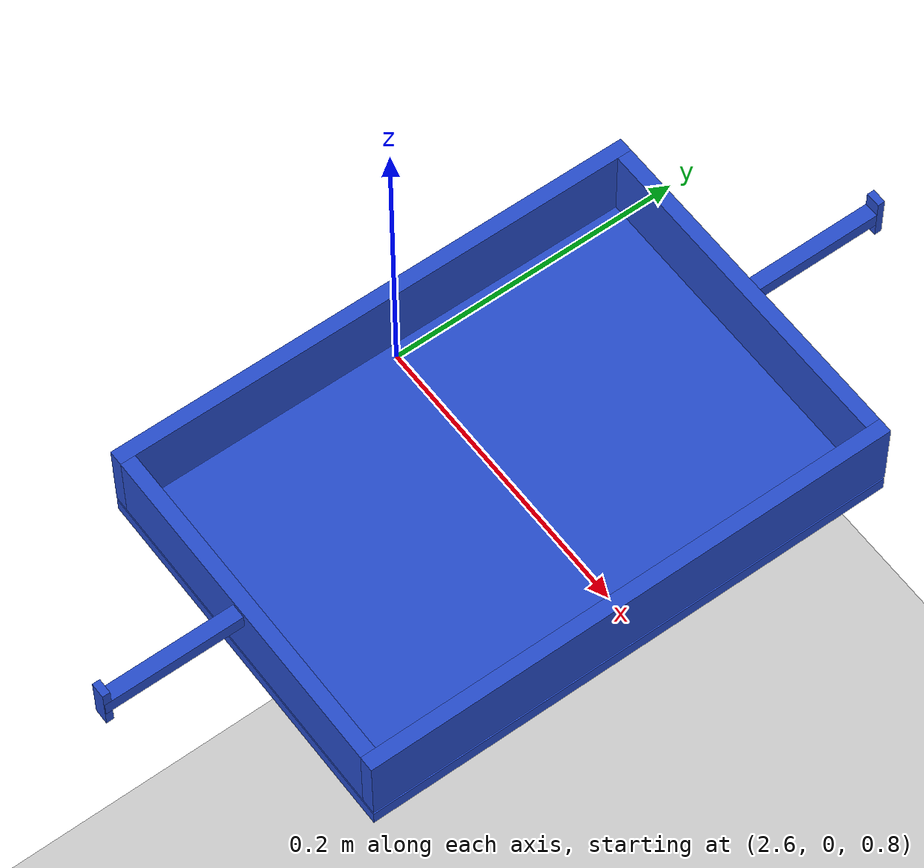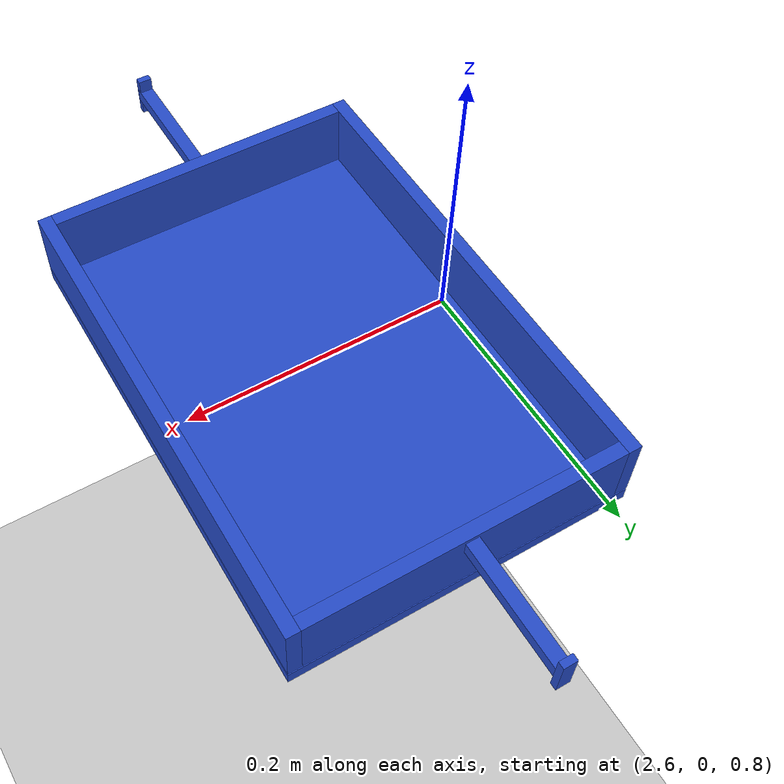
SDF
<sdf version="1.6">
 <world name="default">
  <light name="sun" type="directional">
   <pose>0 0 10 0 -0 0</pose>
   <diffuse>0.8 0.8 0.8 1</diffuse>
   <specular>0.1 0.1 0.1 1</specular>
   <attenuation>
    <range>1000</range>
    <constant>0.9</constant>
    <linear>0.01</linear>
    <quadratic>0.001</quadratic>
   </attenuation>
   <direction>-0.5 0.5 -1</direction>
  </light>
  <model name="ground_plane">
   <static>1</static>
   <link name="link">
    <collision name="collision">
     <geometry><plane><normal>0 0 1</normal><size>100 100</size></plane></geometry>
     <surface><friction><ode><mu>100</mu><mu2>50</mu2></ode></friction></surface>
    </collision>
    <visual name="visual">
     <cast_shadows>0</cast_shadows>
     <geometry><plane><normal>0 0 1</normal><size>100 100</size></plane></geometry>
     <material>
      <script><uri>file://media/materials/scripts/gazebo.material</uri><name>Gazebo/Grey</name></script>
     </material>
    </visual>
   </link>
  </model>
  <gravity>0 0 -9.8</gravity>
  <magnetic_field>6e-06 2.3e-05 -4.2e-05</magnetic_field>
  <atmosphere type="adiabatic"/>
  <physics name="default_physics" default="0" type="ode">
   <max_step_size>0.001</max_step_size>
   <real_time_factor>1</real_time_factor>
   <real_time_update_rate>1000</real_time_update_rate>
  </physics>
  <scene><ambient>0.4 0.4 0.4 1</ambient><background>0.7 0.7 0.7 1</background><shadows>1</shadows></scene>
  <spherical_coordinates>
   <surface_model>EARTH_WGS84</surface_model>
   <latitude_deg>0</latitude_deg>
   <longitude_deg>0</longitude_deg>
   <elevation>0</elevation>
   <heading_deg>0</heading_deg>
  </spherical_coordinates>
  <model name="tray_mod">
   <link name="link_0">
    <pose>-0 -0 -0.051818 0 -0 0</pose>
    <inertial>
     <mass>0.2</mass>
     <inertia>
      <ixx>0.00075</ixx>
      <ixy>0</ixy>
      <ixz>0</ixz>
      <iyy>0.000333</iyy>
      <iyz>0</iyz>
      <izz>0.001083</izz>
     </inertia>
    </inertial>
    <visual name="visual">
     <geometry><box><size>0.36 0.25 0.01</size></box></geometry>
     <material>
      <lighting>1</lighting>
      <script><uri>file://media/materials/scripts/gazebo.material</uri><name>Gazebo/Blue</name></script>
      <shader type="pixel"><normal_map>__default__</normal_map></shader>
      <ambient>0 0 0.3 1</ambient>
      <diffuse>0 0 0.7 1</diffuse>
      <specular>0 0 0.3 1</specular>
      <emissive>0 0 0.2 1</emissive>
     </material>
    </visual>
    <collision name="collision">
     <geometry><box><size>0.36 0.25 0.01</size></box></geometry>
     <surface>
      <friction>
       <ode><mu>1</mu><mu2>1</mu2><fdir1>0 0 0</fdir1><slip1>0</slip1><slip2>0</slip2></ode>
       <torsional>
        <coefficient>1</coefficient>
        <patch_radius>0</patch_radius>
        <surface_radius>0</surface_radius>
        <use_patch_radius>1</use_patch_radius>
        <ode><slip>0</slip></ode>
       </torsional>
      </friction>
      <bounce><restitution_coefficient>0</restitution_coefficient><threshold>1e+06</threshold></bounce>
      <contact>
       <collide_without_contact>0</collide_without_contact>
       <collide_without_contact_bitmask>1</collide_without_contact_bitmask>
       <collide_bitmask>1</collide_bitmask>
       <ode>
        <soft_cfm>0</soft_cfm>
        <soft_erp>0.2</soft_erp>
        <kp>1e+13</kp>
        <kd>1</kd>
        <max_vel>0.01</max_vel>
        <min_depth>0</min_depth>
       </ode>
       <bullet>
        <split_impulse>1</split_impulse>
        <split_impulse_penetration_threshold>-0.01</split_impulse_penetration_threshold>
        <soft_cfm>0</soft_cfm>
        <soft_erp>0.2</soft_erp>
        <kp>1e+13</kp>
        <kd>1</kd>
       </bullet>
      </contact>
     </surface>
    </collision>
   </link>
   <link name="link_1">
    <pose>0 -0.12 -0.02 1.5708 -0 0</pose>
    <inertial>
     <mass>0.025</mass>
     <inertia>
      <ixx>0.000188</ixx>
      <ixy>5e-06</ixy>
      <ixz>0</ixz>
      <iyy>0.166667</iyy>
      <iyz>0</iyz>
      <izz>0.000193</izz>
     </inertia>
    </inertial>
    <visual name="visual">
     <geometry><box><size>0.36 0.05 0.01</size></box></geometry>
     <material>
      <lighting>1</lighting>
      <script><uri>file://media/materials/scripts/gazebo.material</uri><name>Gazebo/Blue</name></script>
      <shader type="pixel"><normal_map>__default__</normal_map></shader>
      <ambient>0 0 0.3 1</ambient>
      <diffuse>0 0 0.7 1</diffuse>
      <specular>0 0 0.3 1</specular>
      <emissive>0 0 0 1</emissive>
     </material>
    </visual>
    <collision name="collision">
     <geometry><box><size>0.36 0.05 0.01</size></box></geometry>
     <surface>
      <friction>
       <ode><mu>1</mu><mu2>1</mu2><fdir1>0 0 0</fdir1><slip1>0</slip1><slip2>0</slip2></ode>
       <torsional>
        <coefficient>1</coefficient>
        <patch_radius>0</patch_radius>
        <surface_radius>0</surface_radius>
        <use_patch_radius>1</use_patch_radius>
        <ode><slip>0</slip></ode>
       </torsional>
      </friction>
      <bounce><restitution_coefficient>0</restitution_coefficient><threshold>1e+06</threshold></bounce>
      <contact>
       <collide_without_contact>0</collide_without_contact>
       <collide_without_contact_bitmask>1</collide_without_contact_bitmask>
       <collide_bitmask>1</collide_bitmask>
       <ode>
        <soft_cfm>0</soft_cfm>
        <soft_erp>0.2</soft_erp>
        <kp>1e+13</kp>
        <kd>1</kd>
        <max_vel>0.01</max_vel>
        <min_depth>0</min_depth>
       </ode>
       <bullet>
        <split_impulse>1</split_impulse>
        <split_impulse_penetration_threshold>-0.01</split_impulse_penetration_threshold>
        <soft_cfm>0</soft_cfm>
        <soft_erp>0.2</soft_erp>
        <kp>1e+13</kp>
        <kd>1</kd>
       </bullet>
      </contact>
     </surface>
    </collision>
   </link>
   <link name="link_1_clone">
    <pose>0 0.12 -0.02 1.5708 -0 0</pose>
    <inertial>
     <mass>0.025</mass>
     <inertia>
      <ixx>0.000188</ixx>
      <ixy>5e-06</ixy>
      <ixz>0</ixz>
      <iyy>0.166667</iyy>
      <iyz>0</iyz>
      <izz>0.000193</izz>
     </inertia>
    </inertial>
    <visual name="visual">
     <geometry><box><size>0.36 0.05 0.01</size></box></geometry>
     <material>
      <lighting>1</lighting>
      <script><uri>file://media/materials/scripts/gazebo.material</uri><name>Gazebo/Blue</name></script>
      <shader type="pixel"><normal_map>__default__</normal_map></shader>
      <ambient>0 0 0.3 1</ambient>
      <diffuse>0 0 0.7 1</diffuse>
      <specular>0 0 0.3 1</specular>
      <emissive>0 0 0 1</emissive>
     </material>
    </visual>
    <collision name="collision">
     <geometry><box><size>0.36 0.05 0.01</size></box></geometry>
     <surface>
      <friction>
       <ode><mu>1</mu><mu2>1</mu2><fdir1>0 0 0</fdir1><slip1>0</slip1><slip2>0</slip2></ode>
       <torsional>
        <coefficient>1</coefficient>
        <patch_radius>0</patch_radius>
        <surface_radius>0</surface_radius>
        <use_patch_radius>1</use_patch_radius>
        <ode><slip>0</slip></ode>
       </torsional>
      </friction>
      <bounce><restitution_coefficient>0</restitution_coefficient><threshold>1e+06</threshold></bounce>
      <contact>
       <collide_without_contact>0</collide_without_contact>
       <collide_without_contact_bitmask>1</collide_without_contact_bitmask>
       <collide_bitmask>1</collide_bitmask>
       <ode>
        <soft_cfm>0</soft_cfm>
        <soft_erp>0.2</soft_erp>
        <kp>1e+13</kp>
        <kd>1</kd>
        <max_vel>0.01</max_vel>
        <min_depth>0</min_depth>
       </ode>
       <bullet>
        <split_impulse>1</split_impulse>
        <split_impulse_penetration_threshold>-0.01</split_impulse_penetration_threshold>
        <soft_cfm>0</soft_cfm>
        <soft_erp>0.2</soft_erp>
        <kp>1e+13</kp>
        <kd>1</kd>
       </bullet>
      </contact>
     </surface>
    </collision>
   </link>
   <link name="link_2">
    <pose>-0.175 -0 -0.02 1.5708 -0 1.5708</pose>
    <inertial>
     <mass>0.02</mass>
     <inertia><ixx>5.4e-05</ixx><ixy>0</ixy><ixz>0</ixz><iyy>4e-06</iyy><iyz>0</iyz><izz>5.8e-05</izz></inertia>
    </inertial>
    <visual name="visual">
     <geometry><box><size>0.23 0.05 0.01</size></box></geometry>
     <material>
      <lighting>1</lighting>
      <script><uri>file://media/materials/scripts/gazebo.material</uri><name>Gazebo/Blue</name></script>
      <shader type="pixel"><normal_map>__default__</normal_map></shader>
      <ambient>0 0 0.3 1</ambient>
      <diffuse>0 0 0.7 1</diffuse>
      <specular>0 0 0.3 1</specular>
      <emissive>0 0 0 1</emissive>
     </material>
    </visual>
    <collision name="collision">
     <geometry><box><size>0.23 0.05 0.01</size></box></geometry>
     <surface>
      <friction>
       <ode><mu>1</mu><mu2>1</mu2><fdir1>0 0 0</fdir1><slip1>0</slip1><slip2>0</slip2></ode>
       <torsional>
        <coefficient>1</coefficient>
        <patch_radius>0</patch_radius>
        <surface_radius>0</surface_radius>
        <use_patch_radius>1</use_patch_radius>
        <ode><slip>0</slip></ode>
       </torsional>
      </friction>
      <bounce><restitution_coefficient>0</restitution_coefficient><threshold>1e+06</threshold></bounce>
      <contact>
       <collide_without_contact>0</collide_without_contact>
       <collide_without_contact_bitmask>1</collide_without_contact_bitmask>
       <collide_bitmask>1</collide_bitmask>
       <ode>
        <soft_cfm>0</soft_cfm>
        <soft_erp>0.2</soft_erp>
        <kp>1e+13</kp>
        <kd>1</kd>
        <max_vel>0.01</max_vel>
        <min_depth>0</min_depth>
       </ode>
       <bullet>
        <split_impulse>1</split_impulse>
        <split_impulse_penetration_threshold>-0.01</split_impulse_penetration_threshold>
        <soft_cfm>0</soft_cfm>
        <soft_erp>0.2</soft_erp>
        <kp>1e+13</kp>
        <kd>1</kd>
       </bullet>
      </contact>
     </surface>
    </collision>
   </link>
   <link name="link_2_clone">
    <pose>0.175 -0 -0.02 1.5708 -0 1.5708</pose>
    <inertial>
     <mass>0.02</mass>
     <inertia><ixx>5.4e-05</ixx><ixy>0</ixy><ixz>0</ixz><iyy>4e-06</iyy><iyz>0</iyz><izz>5.8e-05</izz></inertia>
    </inertial>
    <visual name="visual">
     <geometry><box><size>0.23 0.05 0.01</size></box></geometry>
     <material>
      <lighting>1</lighting>
      <script><uri>file://media/materials/scripts/gazebo.material</uri><name>Gazebo/Blue</name></script>
      <shader type="pixel"><normal_map>__default__</normal_map></shader>
      <ambient>0 0 0.3 1</ambient>
      <diffuse>0 0 0.7 1</diffuse>
      <specular>0 0 0.3 1</specular>
      <emissive>0 0 0 1</emissive>
     </material>
    </visual>
    <collision name="collision">
     <geometry><box><size>0.23 0.05 0.01</size></box></geometry>
     <surface>
      <friction>
       <ode><mu>1</mu><mu2>1</mu2><fdir1>0 0 0</fdir1><slip1>0</slip1><slip2>0</slip2></ode>
       <torsional>
        <coefficient>1</coefficient>
        <patch_radius>0</patch_radius>
        <surface_radius>0</surface_radius>
        <use_patch_radius>1</use_patch_radius>
        <ode><slip>0</slip></ode>
       </torsional>
      </friction>
      <bounce><restitution_coefficient>0</restitution_coefficient><threshold>1e+06</threshold></bounce>
      <contact>
       <collide_without_contact>0</collide_without_contact>
       <collide_without_contact_bitmask>1</collide_without_contact_bitmask>
       <collide_bitmask>1</collide_bitmask>
       <ode>
        <soft_cfm>0</soft_cfm>
        <soft_erp>0.2</soft_erp>
        <kp>1e+13</kp>
        <kd>1</kd>
        <max_vel>0.01</max_vel>
        <min_depth>0</min_depth>
       </ode>
       <bullet>
        <split_impulse>1</split_impulse>
        <split_impulse_penetration_threshold>-0.01</split_impulse_penetration_threshold>
        <soft_cfm>0</soft_cfm>
        <soft_erp>0.2</soft_erp>
        <kp>1e+13</kp>
        <kd>1</kd>
       </bullet>
      </contact>
     </surface>
    </collision>
   </link>
   <link name="link_3">
    <pose>-0.27 -0 -0.003 -3.14159 1.57079 -3.14159</pose>
    <inertial>
     <mass>0.01</mass>
     <inertia><ixx>5e-06</ixx><ixy>0</ixy><ixz>0</ixz><iyy>0</iyy><iyz>0</iyz><izz>5e-06</izz></inertia>
    </inertial>
    <visual name="visual">
     <geometry><box><size>0.03 0.01 0.005</size></box></geometry>
     <material>
      <lighting>1</lighting>
      <script><uri>file://media/materials/scripts/gazebo.material</uri><name>Gazebo/Blue</name></script>
      <shader type="pixel"><normal_map>__default__</normal_map></shader>
      <ambient>0 0 0.3 1</ambient>
      <diffuse>0 0 0.7 1</diffuse>
      <specular>0 0 0.3 1</specular>
      <emissive>0 0 0.3 1</emissive>
     </material>
    </visual>
    <collision name="collision">
     <geometry><box><size>0.03 0.01 0.005</size></box></geometry>
     <surface>
      <friction>
       <ode><mu>1</mu><mu2>1</mu2><fdir1>0 0 0</fdir1><slip1>0</slip1><slip2>0</slip2></ode>
       <torsional>
        <coefficient>1</coefficient>
        <patch_radius>0</patch_radius>
        <surface_radius>0</surface_radius>
        <use_patch_radius>1</use_patch_radius>
        <ode><slip>0</slip></ode>
       </torsional>
      </friction>
      <bounce><restitution_coefficient>0</restitution_coefficient><threshold>1e+06</threshold></bounce>
      <contact>
       <collide_without_contact>0</collide_without_contact>
       <collide_without_contact_bitmask>1</collide_without_contact_bitmask>
       <collide_bitmask>1</collide_bitmask>
       <ode>
        <soft_cfm>0</soft_cfm>
        <soft_erp>0.2</soft_erp>
        <kp>1e+13</kp>
        <kd>1</kd>
        <max_vel>0.01</max_vel>
        <min_depth>0</min_depth>
       </ode>
       <bullet>
        <split_impulse>1</split_impulse>
        <split_impulse_penetration_threshold>-0.01</split_impulse_penetration_threshold>
        <soft_cfm>0</soft_cfm>
        <soft_erp>0.2</soft_erp>
        <kp>1e+13</kp>
        <kd>1</kd>
       </bullet>
      </contact>
     </surface>
    </collision>
   </link>
   <link name="link_3_clone">
    <pose>0.27 -0 -0.003 0 1.57 0</pose>
    <inertial>
     <mass>0.01</mass>
     <inertia><ixx>5e-06</ixx><ixy>0</ixy><ixz>0</ixz><iyy>0</iyy><iyz>0</iyz><izz>5e-06</izz></inertia>
    </inertial>
    <visual name="visual">
     <geometry><box><size>0.03 0.01 0.005</size></box></geometry>
     <material>
      <lighting>1</lighting>
      <script><uri>file://media/materials/scripts/gazebo.material</uri><name>Gazebo/Blue</name></script>
      <shader type="pixel"><normal_map>__default__</normal_map></shader>
      <ambient>0 0 0.3 1</ambient>
      <diffuse>0 0 0.7 1</diffuse>
      <specular>0 0 0.3 1</specular>
      <emissive>0 0 0.2 1</emissive>
     </material>
    </visual>
    <collision name="collision">
     <geometry><box><size>0.03 0.01 0.005</size></box></geometry>
     <surface>
      <friction>
       <ode><mu>1</mu><mu2>1</mu2><fdir1>0 0 0</fdir1><slip1>0</slip1><slip2>0</slip2></ode>
       <torsional>
        <coefficient>1</coefficient>
        <patch_radius>0</patch_radius>
        <surface_radius>0</surface_radius>
        <use_patch_radius>1</use_patch_radius>
        <ode><slip>0</slip></ode>
       </torsional>
      </friction>
      <bounce><restitution_coefficient>0</restitution_coefficient><threshold>1e+06</threshold></bounce>
      <contact>
       <collide_without_contact>0</collide_without_contact>
       <collide_without_contact_bitmask>1</collide_without_contact_bitmask>
       <collide_bitmask>1</collide_bitmask>
       <ode>
        <soft_cfm>0</soft_cfm>
        <soft_erp>0.2</soft_erp>
        <kp>1e+13</kp>
        <kd>1</kd>
        <max_vel>0.01</max_vel>
        <min_depth>0</min_depth>
       </ode>
       <bullet>
        <split_impulse>1</split_impulse>
        <split_impulse_penetration_threshold>-0.01</split_impulse_penetration_threshold>
        <soft_cfm>0</soft_cfm>
        <soft_erp>0.2</soft_erp>
        <kp>1e+13</kp>
        <kd>1</kd>
       </bullet>
      </contact>
     </surface>
    </collision>
   </link>
   <link name="link_4">
    <pose>-0.222 -0 -0.003 -3.14127 0 -3.14127</pose>
    <inertial>
     <mass>0.01</mass>
     <inertia><ixx>1e-06</ixx><ixy>0</ixy><ixz>0</ixz><iyy>0</iyy><iyz>1e-06</iyz><izz>0.166667</izz></inertia>
    </inertial>
    <visual name="visual">
     <geometry><box><size>0.1 0.01 0.01</size></box></geometry>
     <material>
      <lighting>1</lighting>
      <script><uri>file://media/materials/scripts/gazebo.material</uri><name>Gazebo/Blue</name></script>
      <shader type="pixel"><normal_map>__default__</normal_map></shader>
      <ambient>0 0 0.3 1</ambient>
      <diffuse>0 0 0.7 1</diffuse>
      <specular>0 0 0.01 1</specular>
      <emissive>0 0 0 1</emissive>
     </material>
    </visual>
    <collision name="collision">
     <geometry><box><size>0.1 0.01 0.01</size></box></geometry>
     <surface>
      <friction>
       <ode><mu>1</mu><mu2>1</mu2><fdir1>0 0 0</fdir1><slip1>0</slip1><slip2>0</slip2></ode>
       <torsional>
        <coefficient>1</coefficient>
        <patch_radius>0</patch_radius>
        <surface_radius>0</surface_radius>
        <use_patch_radius>1</use_patch_radius>
        <ode><slip>0</slip></ode>
       </torsional>
      </friction>
      <bounce><restitution_coefficient>0</restitution_coefficient><threshold>1e+06</threshold></bounce>
      <contact>
       <collide_without_contact>0</collide_without_contact>
       <collide_without_contact_bitmask>1</collide_without_contact_bitmask>
       <collide_bitmask>1</collide_bitmask>
       <ode>
        <soft_cfm>0</soft_cfm>
        <soft_erp>0.2</soft_erp>
        <kp>1e+13</kp>
        <kd>1</kd>
        <max_vel>0.01</max_vel>
        <min_depth>0</min_depth>
       </ode>
       <bullet>
        <split_impulse>1</split_impulse>
        <split_impulse_penetration_threshold>-0.01</split_impulse_penetration_threshold>
        <soft_cfm>0</soft_cfm>
        <soft_erp>0.2</soft_erp>
        <kp>1e+13</kp>
        <kd>1</kd>
       </bullet>
      </contact>
     </surface>
    </collision>
   </link>
   <link name="link_4_clone_0">
    <pose>0.222 -0 -0.003 -3.14127 0 -3.14127</pose>
    <inertial>
     <mass>0.01</mass>
     <inertia><ixx>1e-06</ixx><ixy>0</ixy><ixz>0</ixz><iyy>0</iyy><iyz>1e-06</iyz><izz>0.166667</izz></inertia>
    </inertial>
    <visual name="visual">
     <geometry><box><size>0.1 0.01 0.01</size></box></geometry>
     <material>
      <lighting>1</lighting>
      <script><uri>file://media/materials/scripts/gazebo.material</uri><name>Gazebo/Blue</name></script>
      <shader type="pixel"><normal_map>__default__</normal_map></shader>
      <ambient>0 0 0.3 1</ambient>
      <diffuse>0 0 0.7 1</diffuse>
      <specular>0 0 0.01 1</specular>
      <emissive>0 0 0 1</emissive>
     </material>
    </visual>
    <collision name="collision">
     <geometry><box><size>0.1 0.01 0.01</size></box></geometry>
     <surface>
      <friction>
       <ode><mu>1</mu><mu2>1</mu2><fdir1>0 0 0</fdir1><slip1>0</slip1><slip2>0</slip2></ode>
       <torsional>
        <coefficient>1</coefficient>
        <patch_radius>0</patch_radius>
        <surface_radius>0</surface_radius>
        <use_patch_radius>1</use_patch_radius>
        <ode><slip>0</slip></ode>
       </torsional>
      </friction>
      <bounce><restitution_coefficient>0</restitution_coefficient><threshold>1e+06</threshold></bounce>
      <contact>
       <collide_without_contact>0</collide_without_contact>
       <collide_without_contact_bitmask>1</collide_without_contact_bitmask>
       <collide_bitmask>1</collide_bitmask>
       <ode>
        <soft_cfm>0</soft_cfm>
        <soft_erp>0.2</soft_erp>
        <kp>1e+13</kp>
        <kd>1</kd>
        <max_vel>0.01</max_vel>
        <min_depth>0</min_depth>
       </ode>
       <bullet>
        <split_impulse>1</split_impulse>
        <split_impulse_penetration_threshold>-0.01</split_impulse_penetration_threshold>
        <soft_cfm>0</soft_cfm>
        <soft_erp>0.2</soft_erp>
        <kp>1e+13</kp>
        <kd>1</kd>
       </bullet>
      </contact>
     </surface>
    </collision>
   </link>
   <joint name="link_0-1_JOINT" type="fixed">
    <parent>link_0</parent>
    <child>link_1</child>
    <pose>0 -0.025 0 0 -0 0</pose>
    <physics>
     <ode><limit><cfm>0</cfm><erp>0.2</erp></limit><suspension><cfm>0</cfm><erp>0.2</erp></suspension></ode>
    </physics>
   </joint>
   <joint name="link_0-1clone_JOINT" type="fixed">
    <parent>link_0</parent>
    <child>link_1_clone</child>
    <pose>0 -0.025 0 0 -0 0</pose>
    <physics>
     <ode><limit><cfm>0</cfm><erp>0.2</erp></limit><suspension><cfm>0</cfm><erp>0.2</erp></suspension></ode>
    </physics>
   </joint>
   <joint name="link_0-2_JOINT" type="fixed">
    <parent>link_0</parent>
    <child>link_2</child>
    <pose>0 -0.025 0 0 -0 0</pose>
    <physics>
     <ode><limit><cfm>0</cfm><erp>0.2</erp></limit><suspension><cfm>0</cfm><erp>0.2</erp></suspension></ode>
    </physics>
   </joint>
   <joint name="link_0-2clone_JOINT" type="fixed">
    <parent>link_0</parent>
    <child>link_2_clone</child>
    <pose>0 -0.025 0 0 -0 0</pose>
    <physics>
     <ode><limit><cfm>0</cfm><erp>0.2</erp></limit><suspension><cfm>0</cfm><erp>0.2</erp></suspension></ode>
    </physics>
   </joint>
   <joint name="link_1-2_JOINT" type="fixed">
    <parent>link_1</parent>
    <child>link_2</child>
    <pose>-0.115 0 0 0 -0 0</pose>
    <physics>
     <ode><limit><cfm>0</cfm><erp>0.2</erp></limit><suspension><cfm>0</cfm><erp>0.2</erp></suspension></ode>
    </physics>
   </joint>
   <joint name="link_1-2clone_JOINT" type="fixed">
    <parent>link_1</parent>
    <child>link_2_clone</child>
    <pose>-0.115 0 0 0 -0 0</pose>
    <physics>
     <ode><limit><cfm>0</cfm><erp>0.2</erp></limit><suspension><cfm>0</cfm><erp>0.2</erp></suspension></ode>
    </physics>
   </joint>
   <joint name="link_1_clone-2_JOINT" type="fixed">
    <parent>link_1_clone</parent>
    <child>link_2</child>
    <pose>0.115 0 0 0 -0 0</pose>
    <physics>
     <ode><limit><cfm>0</cfm><erp>0.2</erp></limit><suspension><cfm>0</cfm><erp>0.2</erp></suspension></ode>
    </physics>
   </joint>
   <joint name="link_1_clone-2clone_JOINT" type="fixed">
    <parent>link_1_clone</parent>
    <child>link_2_clone</child>
    <pose>0.115 0 0 0 -0 0</pose>
    <physics>
     <ode><limit><cfm>0</cfm><erp>0.2</erp></limit><suspension><cfm>0</cfm><erp>0.2</erp></suspension></ode>
    </physics>
   </joint>
   <joint name="link_2-4_JOINT1" type="fixed">
    <parent>link_2</parent>
    <child>link_4</child>
    <pose>-0.045 0 0 0 -0 0</pose>
    <physics>
     <ode><limit><cfm>0</cfm><erp>0.2</erp></limit><suspension><cfm>0</cfm><erp>0.2</erp></suspension></ode>
    </physics>
   </joint>
   <joint name="link_2clone-4clone0_JOINT" type="fixed">
    <parent>link_2_clone</parent>
    <child>link_4_clone_0</child>
    <pose>0.045 0 0 0 -0 0</pose>
    <physics>
     <ode><limit><cfm>0</cfm><erp>0.2</erp></limit><suspension><cfm>0</cfm><erp>0.2</erp></suspension></ode>
    </physics>
   </joint>
   <joint name="link_3clone-4clone0_JOINT" type="fixed">
    <parent>link_3_clone</parent>
    <child>link_4_clone_0</child>
    <pose>-0.045 0 0 0 -0 0</pose>
    <physics>
     <ode><limit><cfm>0</cfm><erp>0.2</erp></limit><suspension><cfm>0</cfm><erp>0.2</erp></suspension></ode>
    </physics>
   </joint>
   <joint name="link_4_JOINT_6" type="fixed">
    <parent>link_4</parent>
    <child>link_3</child>
    <pose>-0.02 0 0 0 -0 0</pose>
    <physics>
     <ode><limit><cfm>0</cfm><erp>0.2</erp></limit><suspension><cfm>0</cfm><erp>0.2</erp></suspension></ode>
    </physics>
   </joint>
   <static>0</static>
   <pose>2.70014 5e-06 0.831814 -5e-06 2.5e-05 1.56663</pose>
  </model>
 </world>
</sdf>
